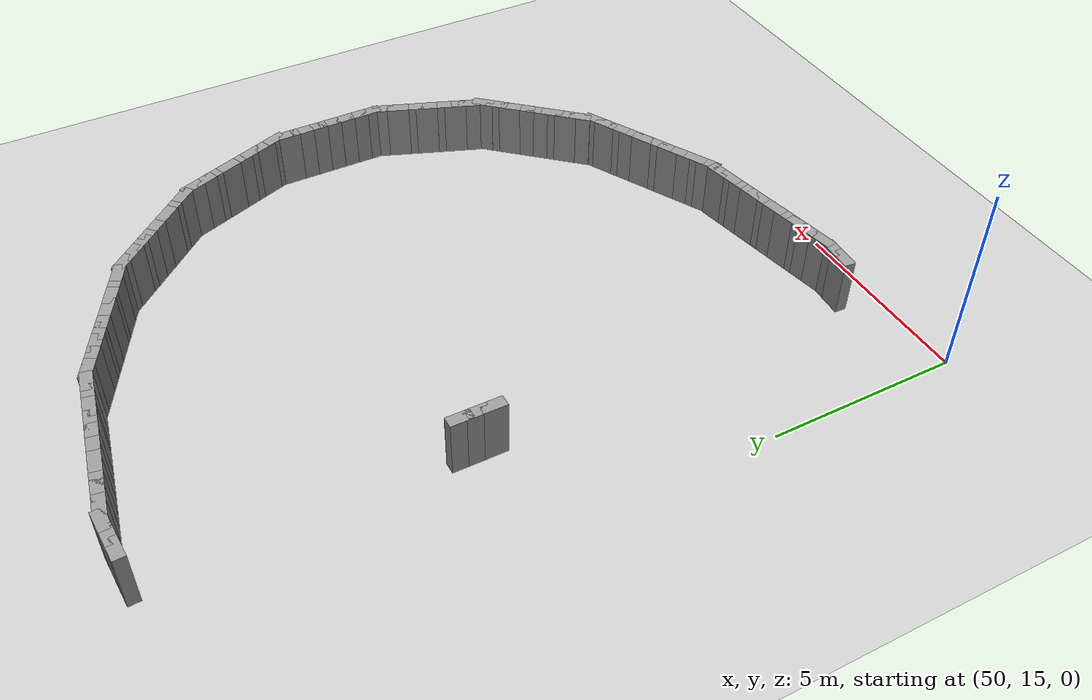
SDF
<sdf version="1.5">
 <world name="test_variable_width">
  <include><uri>model://sun</uri></include>
  <include><uri>model://ground_plane</uri></include>
  <model name="curbL_88">
   <static>true</static>
   <pose>52.624 25.755 0.750 0 0 1.571</pose>
   <link name="link">
    <collision name="col"><geometry><box><size>0.600 0.300 1.500</size></box></geometry></collision>
    <visual name="vis">
     <geometry><box><size>0.600 0.300 1.500</size></box></geometry>
     <material><ambient>0.6 0.6 0.6 1</ambient><diffuse>0.6 0.6 0.6 1</diffuse></material>
    </visual>
   </link>
  </model>
  <model name="curbL_89">
   <static>true</static>
   <pose>52.624 26.155 0.750 0 0 1.571</pose>
   <link name="link">
    <collision name="col"><geometry><box><size>0.600 0.300 1.500</size></box></geometry></collision>
    <visual name="vis">
     <geometry><box><size>0.600 0.300 1.500</size></box></geometry>
     <material><ambient>0.6 0.6 0.6 1</ambient><diffuse>0.6 0.6 0.6 1</diffuse></material>
    </visual>
   </link>
  </model>
  <model name="curbL_90">
   <static>true</static>
   <pose>52.624 26.555 0.750 0 0 1.571</pose>
   <link name="link">
    <collision name="col"><geometry><box><size>0.600 0.300 1.500</size></box></geometry></collision>
    <visual name="vis">
     <geometry><box><size>0.600 0.300 1.500</size></box></geometry>
     <material><ambient>0.6 0.6 0.6 1</ambient><diffuse>0.6 0.6 0.6 1</diffuse></material>
    </visual>
   </link>
  </model>
  <model name="curbR_43">
   <static>true</static>
   <pose>52.712 33.940 0.750 0 0 0.063</pose>
   <link name="link">
    <collision name="col"><geometry><box><size>0.600 0.300 1.500</size></box></geometry></collision>
    <visual name="vis">
     <geometry><box><size>0.600 0.300 1.500</size></box></geometry>
     <material><ambient>0.6 0.6 0.6 1</ambient><diffuse>0.6 0.6 0.6 1</diffuse></material>
    </visual>
   </link>
  </model>
  <model name="curbR_44">
   <static>true</static>
   <pose>53.111 33.966 0.750 0 0 0.063</pose>
   <link name="link">
    <collision name="col"><geometry><box><size>0.600 0.300 1.500</size></box></geometry></collision>
    <visual name="vis">
     <geometry><box><size>0.600 0.300 1.500</size></box></geometry>
     <material><ambient>0.6 0.6 0.6 1</ambient><diffuse>0.6 0.6 0.6 1</diffuse></material>
    </visual>
   </link>
  </model>
  <model name="curbR_45">
   <static>true</static>
   <pose>53.511 33.991 0.750 0 0 0.063</pose>
   <link name="link">
    <collision name="col"><geometry><box><size>0.600 0.300 1.500</size></box></geometry></collision>
    <visual name="vis">
     <geometry><box><size>0.600 0.300 1.500</size></box></geometry>
     <material><ambient>0.6 0.6 0.6 1</ambient><diffuse>0.6 0.6 0.6 1</diffuse></material>
    </visual>
   </link>
  </model>
  <model name="curbR_46">
   <static>true</static>
   <pose>53.905 33.930 0.750 0 0 -0.178</pose>
   <link name="link">
    <collision name="col"><geometry><box><size>0.600 0.300 1.500</size></box></geometry></collision>
    <visual name="vis">
     <geometry><box><size>0.600 0.300 1.500</size></box></geometry>
     <material><ambient>0.6 0.6 0.6 1</ambient><diffuse>0.6 0.6 0.6 1</diffuse></material>
    </visual>
   </link>
  </model>
  <model name="curbR_47">
   <static>true</static>
   <pose>54.298 33.859 0.750 0 0 -0.178</pose>
   <link name="link">
    <collision name="col"><geometry><box><size>0.600 0.300 1.500</size></box></geometry></collision>
    <visual name="vis">
     <geometry><box><size>0.600 0.300 1.500</size></box></geometry>
     <material><ambient>0.6 0.6 0.6 1</ambient><diffuse>0.6 0.6 0.6 1</diffuse></material>
    </visual>
   </link>
  </model>
  <model name="curbR_48">
   <static>true</static>
   <pose>54.692 33.788 0.750 0 0 -0.178</pose>
   <link name="link">
    <collision name="col"><geometry><box><size>0.600 0.300 1.500</size></box></geometry></collision>
    <visual name="vis">
     <geometry><box><size>0.600 0.300 1.500</size></box></geometry>
     <material><ambient>0.6 0.6 0.6 1</ambient><diffuse>0.6 0.6 0.6 1</diffuse></material>
    </visual>
   </link>
  </model>
  <model name="curbR_49">
   <static>true</static>
   <pose>55.086 33.717 0.750 0 0 -0.178</pose>
   <link name="link">
    <collision name="col"><geometry><box><size>0.600 0.300 1.500</size></box></geometry></collision>
    <visual name="vis">
     <geometry><box><size>0.600 0.300 1.500</size></box></geometry>
     <material><ambient>0.6 0.6 0.6 1</ambient><diffuse>0.6 0.6 0.6 1</diffuse></material>
    </visual>
   </link>
  </model>
  <model name="curbR_50">
   <static>true</static>
   <pose>55.479 33.646 0.750 0 0 -0.178</pose>
   <link name="link">
    <collision name="col"><geometry><box><size>0.600 0.300 1.500</size></box></geometry></collision>
    <visual name="vis">
     <geometry><box><size>0.600 0.300 1.500</size></box></geometry>
     <material><ambient>0.6 0.6 0.6 1</ambient><diffuse>0.6 0.6 0.6 1</diffuse></material>
    </visual>
   </link>
  </model>
  <model name="curbR_51">
   <static>true</static>
   <pose>55.873 33.575 0.750 0 0 -0.178</pose>
   <link name="link">
    <collision name="col"><geometry><box><size>0.600 0.300 1.500</size></box></geometry></collision>
    <visual name="vis">
     <geometry><box><size>0.600 0.300 1.500</size></box></geometry>
     <material><ambient>0.6 0.6 0.6 1</ambient><diffuse>0.6 0.6 0.6 1</diffuse></material>
    </visual>
   </link>
  </model>
  <model name="curbR_52">
   <static>true</static>
   <pose>56.267 33.504 0.750 0 0 -0.178</pose>
   <link name="link">
    <collision name="col"><geometry><box><size>0.600 0.300 1.500</size></box></geometry></collision>
    <visual name="vis">
     <geometry><box><size>0.600 0.300 1.500</size></box></geometry>
     <material><ambient>0.6 0.6 0.6 1</ambient><diffuse>0.6 0.6 0.6 1</diffuse></material>
    </visual>
   </link>
  </model>
  <model name="curbR_53">
   <static>true</static>
   <pose>56.660 33.434 0.750 0 0 -0.178</pose>
   <link name="link">
    <collision name="col"><geometry><box><size>0.600 0.300 1.500</size></box></geometry></collision>
    <visual name="vis">
     <geometry><box><size>0.600 0.300 1.500</size></box></geometry>
     <material><ambient>0.6 0.6 0.6 1</ambient><diffuse>0.6 0.6 0.6 1</diffuse></material>
    </visual>
   </link>
  </model>
  <model name="curbR_54">
   <static>true</static>
   <pose>57.054 33.363 0.750 0 0 -0.178</pose>
   <link name="link">
    <collision name="col"><geometry><box><size>0.600 0.300 1.500</size></box></geometry></collision>
    <visual name="vis">
     <geometry><box><size>0.600 0.300 1.500</size></box></geometry>
     <material><ambient>0.6 0.6 0.6 1</ambient><diffuse>0.6 0.6 0.6 1</diffuse></material>
    </visual>
   </link>
  </model>
  <model name="curbR_55">
   <static>true</static>
   <pose>57.448 33.292 0.750 0 0 -0.178</pose>
   <link name="link">
    <collision name="col"><geometry><box><size>0.600 0.300 1.500</size></box></geometry></collision>
    <visual name="vis">
     <geometry><box><size>0.600 0.300 1.500</size></box></geometry>
     <material><ambient>0.6 0.6 0.6 1</ambient><diffuse>0.6 0.6 0.6 1</diffuse></material>
    </visual>
   </link>
  </model>
  <model name="curbR_56">
   <static>true</static>
   <pose>57.828 33.180 0.750 0 0 -0.470</pose>
   <link name="link">
    <collision name="col"><geometry><box><size>0.600 0.300 1.500</size></box></geometry></collision>
    <visual name="vis">
     <geometry><box><size>0.600 0.300 1.500</size></box></geometry>
     <material><ambient>0.6 0.6 0.6 1</ambient><diffuse>0.6 0.6 0.6 1</diffuse></material>
    </visual>
   </link>
  </model>
  <model name="curbR_57">
   <static>true</static>
   <pose>58.184 32.999 0.750 0 0 -0.470</pose>
   <link name="link">
    <collision name="col"><geometry><box><size>0.600 0.300 1.500</size></box></geometry></collision>
    <visual name="vis">
     <geometry><box><size>0.600 0.300 1.500</size></box></geometry>
     <material><ambient>0.6 0.6 0.6 1</ambient><diffuse>0.6 0.6 0.6 1</diffuse></material>
    </visual>
   </link>
  </model>
  <model name="curbR_58">
   <static>true</static>
   <pose>58.541 32.818 0.750 0 0 -0.470</pose>
   <link name="link">
    <collision name="col"><geometry><box><size>0.600 0.300 1.500</size></box></geometry></collision>
    <visual name="vis">
     <geometry><box><size>0.600 0.300 1.500</size></box></geometry>
     <material><ambient>0.6 0.6 0.6 1</ambient><diffuse>0.6 0.6 0.6 1</diffuse></material>
    </visual>
   </link>
  </model>
  <model name="curbR_59">
   <static>true</static>
   <pose>58.898 32.637 0.750 0 0 -0.470</pose>
   <link name="link">
    <collision name="col"><geometry><box><size>0.600 0.300 1.500</size></box></geometry></collision>
    <visual name="vis">
     <geometry><box><size>0.600 0.300 1.500</size></box></geometry>
     <material><ambient>0.6 0.6 0.6 1</ambient><diffuse>0.6 0.6 0.6 1</diffuse></material>
    </visual>
   </link>
  </model>
  <model name="curbR_60">
   <static>true</static>
   <pose>59.254 32.456 0.750 0 0 -0.470</pose>
   <link name="link">
    <collision name="col"><geometry><box><size>0.600 0.300 1.500</size></box></geometry></collision>
    <visual name="vis">
     <geometry><box><size>0.600 0.300 1.500</size></box></geometry>
     <material><ambient>0.6 0.6 0.6 1</ambient><diffuse>0.6 0.6 0.6 1</diffuse></material>
    </visual>
   </link>
  </model>
  <model name="curbR_61">
   <static>true</static>
   <pose>59.611 32.274 0.750 0 0 -0.470</pose>
   <link name="link">
    <collision name="col"><geometry><box><size>0.600 0.300 1.500</size></box></geometry></collision>
    <visual name="vis">
     <geometry><box><size>0.600 0.300 1.500</size></box></geometry>
     <material><ambient>0.6 0.6 0.6 1</ambient><diffuse>0.6 0.6 0.6 1</diffuse></material>
    </visual>
   </link>
  </model>
  <model name="curbR_62">
   <static>true</static>
   <pose>59.968 32.093 0.750 0 0 -0.470</pose>
   <link name="link">
    <collision name="col"><geometry><box><size>0.600 0.300 1.500</size></box></geometry></collision>
    <visual name="vis">
     <geometry><box><size>0.600 0.300 1.500</size></box></geometry>
     <material><ambient>0.6 0.6 0.6 1</ambient><diffuse>0.6 0.6 0.6 1</diffuse></material>
    </visual>
   </link>
  </model>
  <model name="curbR_63">
   <static>true</static>
   <pose>60.324 31.912 0.750 0 0 -0.470</pose>
   <link name="link">
    <collision name="col"><geometry><box><size>0.600 0.300 1.500</size></box></geometry></collision>
    <visual name="vis">
     <geometry><box><size>0.600 0.300 1.500</size></box></geometry>
     <material><ambient>0.6 0.6 0.6 1</ambient><diffuse>0.6 0.6 0.6 1</diffuse></material>
    </visual>
   </link>
  </model>
  <model name="curbR_64">
   <static>true</static>
   <pose>60.681 31.731 0.750 0 0 -0.470</pose>
   <link name="link">
    <collision name="col"><geometry><box><size>0.600 0.300 1.500</size></box></geometry></collision>
    <visual name="vis">
     <geometry><box><size>0.600 0.300 1.500</size></box></geometry>
     <material><ambient>0.6 0.6 0.6 1</ambient><diffuse>0.6 0.6 0.6 1</diffuse></material>
    </visual>
   </link>
  </model>
  <model name="curbR_65">
   <static>true</static>
   <pose>61.011 31.515 0.750 0 0 -0.827</pose>
   <link name="link">
    <collision name="col"><geometry><box><size>0.600 0.300 1.500</size></box></geometry></collision>
    <visual name="vis">
     <geometry><box><size>0.600 0.300 1.500</size></box></geometry>
     <material><ambient>0.6 0.6 0.6 1</ambient><diffuse>0.6 0.6 0.6 1</diffuse></material>
    </visual>
   </link>
  </model>
  <model name="curbR_66">
   <static>true</static>
   <pose>61.281 31.220 0.750 0 0 -0.827</pose>
   <link name="link">
    <collision name="col"><geometry><box><size>0.600 0.300 1.500</size></box></geometry></collision>
    <visual name="vis">
     <geometry><box><size>0.600 0.300 1.500</size></box></geometry>
     <material><ambient>0.6 0.6 0.6 1</ambient><diffuse>0.6 0.6 0.6 1</diffuse></material>
    </visual>
   </link>
  </model>
  <model name="curbR_67">
   <static>true</static>
   <pose>61.552 30.926 0.750 0 0 -0.827</pose>
   <link name="link">
    <collision name="col"><geometry><box><size>0.600 0.300 1.500</size></box></geometry></collision>
    <visual name="vis">
     <geometry><box><size>0.600 0.300 1.500</size></box></geometry>
     <material><ambient>0.6 0.6 0.6 1</ambient><diffuse>0.6 0.6 0.6 1</diffuse></material>
    </visual>
   </link>
  </model>
  <model name="curbR_68">
   <static>true</static>
   <pose>61.823 30.631 0.750 0 0 -0.827</pose>
   <link name="link">
    <collision name="col"><geometry><box><size>0.600 0.300 1.500</size></box></geometry></collision>
    <visual name="vis">
     <geometry><box><size>0.600 0.300 1.500</size></box></geometry>
     <material><ambient>0.6 0.6 0.6 1</ambient><diffuse>0.6 0.6 0.6 1</diffuse></material>
    </visual>
   </link>
  </model>
  <model name="curbR_69">
   <static>true</static>
   <pose>62.093 30.337 0.750 0 0 -0.827</pose>
   <link name="link">
    <collision name="col"><geometry><box><size>0.600 0.300 1.500</size></box></geometry></collision>
    <visual name="vis">
     <geometry><box><size>0.600 0.300 1.500</size></box></geometry>
     <material><ambient>0.6 0.6 0.6 1</ambient><diffuse>0.6 0.6 0.6 1</diffuse></material>
    </visual>
   </link>
  </model>
  <model name="curbR_70">
   <static>true</static>
   <pose>62.364 30.042 0.750 0 0 -0.827</pose>
   <link name="link">
    <collision name="col"><geometry><box><size>0.600 0.300 1.500</size></box></geometry></collision>
    <visual name="vis">
     <geometry><box><size>0.600 0.300 1.500</size></box></geometry>
     <material><ambient>0.6 0.6 0.6 1</ambient><diffuse>0.6 0.6 0.6 1</diffuse></material>
    </visual>
   </link>
  </model>
  <model name="curbR_71">
   <static>true</static>
   <pose>62.635 29.748 0.750 0 0 -0.827</pose>
   <link name="link">
    <collision name="col"><geometry><box><size>0.600 0.300 1.500</size></box></geometry></collision>
    <visual name="vis">
     <geometry><box><size>0.600 0.300 1.500</size></box></geometry>
     <material><ambient>0.6 0.6 0.6 1</ambient><diffuse>0.6 0.6 0.6 1</diffuse></material>
    </visual>
   </link>
  </model>
  <model name="curbR_72">
   <static>true</static>
   <pose>62.906 29.453 0.750 0 0 -0.827</pose>
   <link name="link">
    <collision name="col"><geometry><box><size>0.600 0.300 1.500</size></box></geometry></collision>
    <visual name="vis">
     <geometry><box><size>0.600 0.300 1.500</size></box></geometry>
     <material><ambient>0.6 0.6 0.6 1</ambient><diffuse>0.6 0.6 0.6 1</diffuse></material>
    </visual>
   </link>
  </model>
  <model name="curbR_73">
   <static>true</static>
   <pose>63.130 29.130 0.750 0 0 -1.198</pose>
   <link name="link">
    <collision name="col"><geometry><box><size>0.600 0.300 1.500</size></box></geometry></collision>
    <visual name="vis">
     <geometry><box><size>0.600 0.300 1.500</size></box></geometry>
     <material><ambient>0.6 0.6 0.6 1</ambient><diffuse>0.6 0.6 0.6 1</diffuse></material>
    </visual>
   </link>
  </model>
  <model name="curbR_74">
   <static>true</static>
   <pose>63.276 28.757 0.750 0 0 -1.198</pose>
   <link name="link">
    <collision name="col"><geometry><box><size>0.600 0.300 1.500</size></box></geometry></collision>
    <visual name="vis">
     <geometry><box><size>0.600 0.300 1.500</size></box></geometry>
     <material><ambient>0.6 0.6 0.6 1</ambient><diffuse>0.6 0.6 0.6 1</diffuse></material>
    </visual>
   </link>
  </model>
  <model name="curbR_75">
   <static>true</static>
   <pose>63.422 28.385 0.750 0 0 -1.198</pose>
   <link name="link">
    <collision name="col"><geometry><box><size>0.600 0.300 1.500</size></box></geometry></collision>
    <visual name="vis">
     <geometry><box><size>0.600 0.300 1.500</size></box></geometry>
     <material><ambient>0.6 0.6 0.6 1</ambient><diffuse>0.6 0.6 0.6 1</diffuse></material>
    </visual>
   </link>
  </model>
  <model name="curbR_76">
   <static>true</static>
   <pose>63.567 28.012 0.750 0 0 -1.198</pose>
   <link name="link">
    <collision name="col"><geometry><box><size>0.600 0.300 1.500</size></box></geometry></collision>
    <visual name="vis">
     <geometry><box><size>0.600 0.300 1.500</size></box></geometry>
     <material><ambient>0.6 0.6 0.6 1</ambient><diffuse>0.6 0.6 0.6 1</diffuse></material>
    </visual>
   </link>
  </model>
  <model name="curbR_77">
   <static>true</static>
   <pose>63.713 27.640 0.750 0 0 -1.198</pose>
   <link name="link">
    <collision name="col"><geometry><box><size>0.600 0.300 1.500</size></box></geometry></collision>
    <visual name="vis">
     <geometry><box><size>0.600 0.300 1.500</size></box></geometry>
     <material><ambient>0.6 0.6 0.6 1</ambient><diffuse>0.6 0.6 0.6 1</diffuse></material>
    </visual>
   </link>
  </model>
  <model name="curbR_78">
   <static>true</static>
   <pose>63.859 27.267 0.750 0 0 -1.198</pose>
   <link name="link">
    <collision name="col"><geometry><box><size>0.600 0.300 1.500</size></box></geometry></collision>
    <visual name="vis">
     <geometry><box><size>0.600 0.300 1.500</size></box></geometry>
     <material><ambient>0.6 0.6 0.6 1</ambient><diffuse>0.6 0.6 0.6 1</diffuse></material>
    </visual>
   </link>
  </model>
  <model name="curbR_79">
   <static>true</static>
   <pose>64.004 26.895 0.750 0 0 -1.198</pose>
   <link name="link">
    <collision name="col"><geometry><box><size>0.600 0.300 1.500</size></box></geometry></collision>
    <visual name="vis">
     <geometry><box><size>0.600 0.300 1.500</size></box></geometry>
     <material><ambient>0.6 0.6 0.6 1</ambient><diffuse>0.6 0.6 0.6 1</diffuse></material>
    </visual>
   </link>
  </model>
  <model name="curbR_80">
   <static>true</static>
   <pose>64.150 26.522 0.750 0 0 -1.198</pose>
   <link name="link">
    <collision name="col"><geometry><box><size>0.600 0.300 1.500</size></box></geometry></collision>
    <visual name="vis">
     <geometry><box><size>0.600 0.300 1.500</size></box></geometry>
     <material><ambient>0.6 0.6 0.6 1</ambient><diffuse>0.6 0.6 0.6 1</diffuse></material>
    </visual>
   </link>
  </model>
  <model name="curbR_81">
   <static>true</static>
   <pose>64.171 26.126 0.750 0 0 -1.571</pose>
   <link name="link">
    <collision name="col"><geometry><box><size>0.600 0.300 1.500</size></box></geometry></collision>
    <visual name="vis">
     <geometry><box><size>0.600 0.300 1.500</size></box></geometry>
     <material><ambient>0.6 0.6 0.6 1</ambient><diffuse>0.6 0.6 0.6 1</diffuse></material>
    </visual>
   </link>
  </model>
  <model name="curbR_82">
   <static>true</static>
   <pose>64.171 25.726 0.750 0 0 -1.571</pose>
   <link name="link">
    <collision name="col"><geometry><box><size>0.600 0.300 1.500</size></box></geometry></collision>
    <visual name="vis">
     <geometry><box><size>0.600 0.300 1.500</size></box></geometry>
     <material><ambient>0.6 0.6 0.6 1</ambient><diffuse>0.6 0.6 0.6 1</diffuse></material>
    </visual>
   </link>
  </model>
  <model name="curbR_83">
   <static>true</static>
   <pose>64.171 25.326 0.750 0 0 -1.571</pose>
   <link name="link">
    <collision name="col"><geometry><box><size>0.600 0.300 1.500</size></box></geometry></collision>
    <visual name="vis">
     <geometry><box><size>0.600 0.300 1.500</size></box></geometry>
     <material><ambient>0.6 0.6 0.6 1</ambient><diffuse>0.6 0.6 0.6 1</diffuse></material>
    </visual>
   </link>
  </model>
  <model name="curbR_84">
   <static>true</static>
   <pose>64.171 24.926 0.750 0 0 -1.571</pose>
   <link name="link">
    <collision name="col"><geometry><box><size>0.600 0.300 1.500</size></box></geometry></collision>
    <visual name="vis">
     <geometry><box><size>0.600 0.300 1.500</size></box></geometry>
     <material><ambient>0.6 0.6 0.6 1</ambient><diffuse>0.6 0.6 0.6 1</diffuse></material>
    </visual>
   </link>
  </model>
  <model name="curbR_85">
   <static>true</static>
   <pose>64.171 24.526 0.750 0 0 -1.571</pose>
   <link name="link">
    <collision name="col"><geometry><box><size>0.600 0.300 1.500</size></box></geometry></collision>
    <visual name="vis">
     <geometry><box><size>0.600 0.300 1.500</size></box></geometry>
     <material><ambient>0.6 0.6 0.6 1</ambient><diffuse>0.6 0.6 0.6 1</diffuse></material>
    </visual>
   </link>
  </model>
  <model name="curbR_86">
   <static>true</static>
   <pose>64.171 24.126 0.750 0 0 -1.571</pose>
   <link name="link">
    <collision name="col"><geometry><box><size>0.600 0.300 1.500</size></box></geometry></collision>
    <visual name="vis">
     <geometry><box><size>0.600 0.300 1.500</size></box></geometry>
     <material><ambient>0.6 0.6 0.6 1</ambient><diffuse>0.6 0.6 0.6 1</diffuse></material>
    </visual>
   </link>
  </model>
  <model name="curbR_87">
   <static>true</static>
   <pose>64.171 23.726 0.750 0 0 -1.571</pose>
   <link name="link">
    <collision name="col"><geometry><box><size>0.600 0.300 1.500</size></box></geometry></collision>
    <visual name="vis">
     <geometry><box><size>0.600 0.300 1.500</size></box></geometry>
     <material><ambient>0.6 0.6 0.6 1</ambient><diffuse>0.6 0.6 0.6 1</diffuse></material>
    </visual>
   </link>
  </model>
  <model name="curbR_88">
   <static>true</static>
   <pose>64.096 23.340 0.750 0 0 -1.944</pose>
   <link name="link">
    <collision name="col"><geometry><box><size>0.600 0.300 1.500</size></box></geometry></collision>
    <visual name="vis">
     <geometry><box><size>0.600 0.300 1.500</size></box></geometry>
     <material><ambient>0.6 0.6 0.6 1</ambient><diffuse>0.6 0.6 0.6 1</diffuse></material>
    </visual>
   </link>
  </model>
  <model name="curbR_89">
   <static>true</static>
   <pose>63.950 22.968 0.750 0 0 -1.944</pose>
   <link name="link">
    <collision name="col"><geometry><box><size>0.600 0.300 1.500</size></box></geometry></collision>
    <visual name="vis">
     <geometry><box><size>0.600 0.300 1.500</size></box></geometry>
     <material><ambient>0.6 0.6 0.6 1</ambient><diffuse>0.6 0.6 0.6 1</diffuse></material>
    </visual>
   </link>
  </model>
  <model name="curbR_90">
   <static>true</static>
   <pose>63.805 22.595 0.750 0 0 -1.944</pose>
   <link name="link">
    <collision name="col"><geometry><box><size>0.600 0.300 1.500</size></box></geometry></collision>
    <visual name="vis">
     <geometry><box><size>0.600 0.300 1.500</size></box></geometry>
     <material><ambient>0.6 0.6 0.6 1</ambient><diffuse>0.6 0.6 0.6 1</diffuse></material>
    </visual>
   </link>
  </model>
  <model name="curbR_91">
   <static>true</static>
   <pose>63.659 22.223 0.750 0 0 -1.944</pose>
   <link name="link">
    <collision name="col"><geometry><box><size>0.600 0.300 1.500</size></box></geometry></collision>
    <visual name="vis">
     <geometry><box><size>0.600 0.300 1.500</size></box></geometry>
     <material><ambient>0.6 0.6 0.6 1</ambient><diffuse>0.6 0.6 0.6 1</diffuse></material>
    </visual>
   </link>
  </model>
  <model name="curbR_92">
   <static>true</static>
   <pose>63.514 21.850 0.750 0 0 -1.944</pose>
   <link name="link">
    <collision name="col"><geometry><box><size>0.600 0.300 1.500</size></box></geometry></collision>
    <visual name="vis">
     <geometry><box><size>0.600 0.300 1.500</size></box></geometry>
     <material><ambient>0.6 0.6 0.6 1</ambient><diffuse>0.6 0.6 0.6 1</diffuse></material>
    </visual>
   </link>
  </model>
  <model name="curbR_93">
   <static>true</static>
   <pose>63.368 21.478 0.750 0 0 -1.944</pose>
   <link name="link">
    <collision name="col"><geometry><box><size>0.600 0.300 1.500</size></box></geometry></collision>
    <visual name="vis">
     <geometry><box><size>0.600 0.300 1.500</size></box></geometry>
     <material><ambient>0.6 0.6 0.6 1</ambient><diffuse>0.6 0.6 0.6 1</diffuse></material>
    </visual>
   </link>
  </model>
  <model name="curbR_94">
   <static>true</static>
   <pose>63.222 21.105 0.750 0 0 -1.944</pose>
   <link name="link">
    <collision name="col"><geometry><box><size>0.600 0.300 1.500</size></box></geometry></collision>
    <visual name="vis">
     <geometry><box><size>0.600 0.300 1.500</size></box></geometry>
     <material><ambient>0.6 0.6 0.6 1</ambient><diffuse>0.6 0.6 0.6 1</diffuse></material>
    </visual>
   </link>
  </model>
  <model name="curbR_95">
   <static>true</static>
   <pose>63.076 20.733 0.750 0 0 -2.314</pose>
   <link name="link">
    <collision name="col"><geometry><box><size>0.600 0.300 1.500</size></box></geometry></collision>
    <visual name="vis">
     <geometry><box><size>0.600 0.300 1.500</size></box></geometry>
     <material><ambient>0.6 0.6 0.6 1</ambient><diffuse>0.6 0.6 0.6 1</diffuse></material>
    </visual>
   </link>
  </model>
  <model name="curbR_96">
   <static>true</static>
   <pose>62.806 20.438 0.750 0 0 -2.314</pose>
   <link name="link">
    <collision name="col"><geometry><box><size>0.600 0.300 1.500</size></box></geometry></collision>
    <visual name="vis">
     <geometry><box><size>0.600 0.300 1.500</size></box></geometry>
     <material><ambient>0.6 0.6 0.6 1</ambient><diffuse>0.6 0.6 0.6 1</diffuse></material>
    </visual>
   </link>
  </model>
  <model name="curbR_97">
   <static>true</static>
   <pose>62.535 20.144 0.750 0 0 -2.314</pose>
   <link name="link">
    <collision name="col"><geometry><box><size>0.600 0.300 1.500</size></box></geometry></collision>
    <visual name="vis">
     <geometry><box><size>0.600 0.300 1.500</size></box></geometry>
     <material><ambient>0.6 0.6 0.6 1</ambient><diffuse>0.6 0.6 0.6 1</diffuse></material>
    </visual>
   </link>
  </model>
  <model name="curbR_98">
   <static>true</static>
   <pose>62.264 19.849 0.750 0 0 -2.314</pose>
   <link name="link">
    <collision name="col"><geometry><box><size>0.600 0.300 1.500</size></box></geometry></collision>
    <visual name="vis">
     <geometry><box><size>0.600 0.300 1.500</size></box></geometry>
     <material><ambient>0.6 0.6 0.6 1</ambient><diffuse>0.6 0.6 0.6 1</diffuse></material>
    </visual>
   </link>
  </model>
  <model name="curbR_99">
   <static>true</static>
   <pose>61.994 19.555 0.750 0 0 -2.314</pose>
   <link name="link">
    <collision name="col"><geometry><box><size>0.600 0.300 1.500</size></box></geometry></collision>
    <visual name="vis">
     <geometry><box><size>0.600 0.300 1.500</size></box></geometry>
     <material><ambient>0.6 0.6 0.6 1</ambient><diffuse>0.6 0.6 0.6 1</diffuse></material>
    </visual>
   </link>
  </model>
  <model name="curbR_100">
   <static>true</static>
   <pose>61.723 19.260 0.750 0 0 -2.314</pose>
   <link name="link">
    <collision name="col"><geometry><box><size>0.600 0.300 1.500</size></box></geometry></collision>
    <visual name="vis">
     <geometry><box><size>0.600 0.300 1.500</size></box></geometry>
     <material><ambient>0.6 0.6 0.6 1</ambient><diffuse>0.6 0.6 0.6 1</diffuse></material>
    </visual>
   </link>
  </model>
  <model name="curbR_101">
   <static>true</static>
   <pose>61.452 18.966 0.750 0 0 -2.314</pose>
   <link name="link">
    <collision name="col"><geometry><box><size>0.600 0.300 1.500</size></box></geometry></collision>
    <visual name="vis">
     <geometry><box><size>0.600 0.300 1.500</size></box></geometry>
     <material><ambient>0.6 0.6 0.6 1</ambient><diffuse>0.6 0.6 0.6 1</diffuse></material>
    </visual>
   </link>
  </model>
  <model name="curbR_102">
   <static>true</static>
   <pose>61.181 18.671 0.750 0 0 -2.314</pose>
   <link name="link">
    <collision name="col"><geometry><box><size>0.600 0.300 1.500</size></box></geometry></collision>
    <visual name="vis">
     <geometry><box><size>0.600 0.300 1.500</size></box></geometry>
     <material><ambient>0.6 0.6 0.6 1</ambient><diffuse>0.6 0.6 0.6 1</diffuse></material>
    </visual>
   </link>
  </model>
  <model name="curbR_103">
   <static>true</static>
   <pose>60.906 18.383 0.750 0 0 -2.672</pose>
   <link name="link">
    <collision name="col"><geometry><box><size>0.600 0.300 1.500</size></box></geometry></collision>
    <visual name="vis">
     <geometry><box><size>0.600 0.300 1.500</size></box></geometry>
     <material><ambient>0.6 0.6 0.6 1</ambient><diffuse>0.6 0.6 0.6 1</diffuse></material>
    </visual>
   </link>
  </model>
  <model name="curbR_104">
   <static>true</static>
   <pose>60.549 18.202 0.750 0 0 -2.672</pose>
   <link name="link">
    <collision name="col"><geometry><box><size>0.600 0.300 1.500</size></box></geometry></collision>
    <visual name="vis">
     <geometry><box><size>0.600 0.300 1.500</size></box></geometry>
     <material><ambient>0.6 0.6 0.6 1</ambient><diffuse>0.6 0.6 0.6 1</diffuse></material>
    </visual>
   </link>
  </model>
  <model name="curbR_105">
   <static>true</static>
   <pose>60.193 18.021 0.750 0 0 -2.672</pose>
   <link name="link">
    <collision name="col"><geometry><box><size>0.600 0.300 1.500</size></box></geometry></collision>
    <visual name="vis">
     <geometry><box><size>0.600 0.300 1.500</size></box></geometry>
     <material><ambient>0.6 0.6 0.6 1</ambient><diffuse>0.6 0.6 0.6 1</diffuse></material>
    </visual>
   </link>
  </model>
  <model name="curbR_106">
   <static>true</static>
   <pose>59.836 17.840 0.750 0 0 -2.672</pose>
   <link name="link">
    <collision name="col"><geometry><box><size>0.600 0.300 1.500</size></box></geometry></collision>
    <visual name="vis">
     <geometry><box><size>0.600 0.300 1.500</size></box></geometry>
     <material><ambient>0.6 0.6 0.6 1</ambient><diffuse>0.6 0.6 0.6 1</diffuse></material>
    </visual>
   </link>
  </model>
  <model name="curbR_107">
   <static>true</static>
   <pose>59.479 17.659 0.750 0 0 -2.672</pose>
   <link name="link">
    <collision name="col"><geometry><box><size>0.600 0.300 1.500</size></box></geometry></collision>
    <visual name="vis">
     <geometry><box><size>0.600 0.300 1.500</size></box></geometry>
     <material><ambient>0.6 0.6 0.6 1</ambient><diffuse>0.6 0.6 0.6 1</diffuse></material>
    </visual>
   </link>
  </model>
  <model name="curbR_108">
   <static>true</static>
   <pose>59.123 17.478 0.750 0 0 -2.672</pose>
   <link name="link">
    <collision name="col"><geometry><box><size>0.600 0.300 1.500</size></box></geometry></collision>
    <visual name="vis">
     <geometry><box><size>0.600 0.300 1.500</size></box></geometry>
     <material><ambient>0.6 0.6 0.6 1</ambient><diffuse>0.6 0.6 0.6 1</diffuse></material>
    </visual>
   </link>
  </model>
  <model name="curbR_109">
   <static>true</static>
   <pose>58.766 17.297 0.750 0 0 -2.672</pose>
   <link name="link">
    <collision name="col"><geometry><box><size>0.600 0.300 1.500</size></box></geometry></collision>
    <visual name="vis">
     <geometry><box><size>0.600 0.300 1.500</size></box></geometry>
     <material><ambient>0.6 0.6 0.6 1</ambient><diffuse>0.6 0.6 0.6 1</diffuse></material>
    </visual>
   </link>
  </model>
  <model name="curbR_110">
   <static>true</static>
   <pose>58.409 17.115 0.750 0 0 -2.672</pose>
   <link name="link">
    <collision name="col"><geometry><box><size>0.600 0.300 1.500</size></box></geometry></collision>
    <visual name="vis">
     <geometry><box><size>0.600 0.300 1.500</size></box></geometry>
     <material><ambient>0.6 0.6 0.6 1</ambient><diffuse>0.6 0.6 0.6 1</diffuse></material>
    </visual>
   </link>
  </model>
  <model name="curbR_111">
   <static>true</static>
   <pose>58.053 16.934 0.750 0 0 -2.672</pose>
   <link name="link">
    <collision name="col"><geometry><box><size>0.600 0.300 1.500</size></box></geometry></collision>
    <visual name="vis">
     <geometry><box><size>0.600 0.300 1.500</size></box></geometry>
     <material><ambient>0.6 0.6 0.6 1</ambient><diffuse>0.6 0.6 0.6 1</diffuse></material>
    </visual>
   </link>
  </model>
  <model name="curbR_112">
   <static>true</static>
   <pose>57.696 16.753 0.750 0 0 -2.672</pose>
   <link name="link">
    <collision name="col"><geometry><box><size>0.600 0.300 1.500</size></box></geometry></collision>
    <visual name="vis">
     <geometry><box><size>0.600 0.300 1.500</size></box></geometry>
     <material><ambient>0.6 0.6 0.6 1</ambient><diffuse>0.6 0.6 0.6 1</diffuse></material>
    </visual>
   </link>
  </model>
  <model name="curbR_113">
   <static>true</static>
   <pose>57.302 16.682 0.750 0 0 -2.963</pose>
   <link name="link">
    <collision name="col"><geometry><box><size>0.600 0.300 1.500</size></box></geometry></collision>
    <visual name="vis">
     <geometry><box><size>0.600 0.300 1.500</size></box></geometry>
     <material><ambient>0.6 0.6 0.6 1</ambient><diffuse>0.6 0.6 0.6 1</diffuse></material>
    </visual>
   </link>
  </model>
  <model name="curbR_114">
   <static>true</static>
   <pose>56.909 16.611 0.750 0 0 -2.963</pose>
   <link name="link">
    <collision name="col"><geometry><box><size>0.600 0.300 1.500</size></box></geometry></collision>
    <visual name="vis">
     <geometry><box><size>0.600 0.300 1.500</size></box></geometry>
     <material><ambient>0.6 0.6 0.6 1</ambient><diffuse>0.6 0.6 0.6 1</diffuse></material>
    </visual>
   </link>
  </model>
  <model name="curbR_115">
   <static>true</static>
   <pose>56.515 16.540 0.750 0 0 -2.963</pose>
   <link name="link">
    <collision name="col"><geometry><box><size>0.600 0.300 1.500</size></box></geometry></collision>
    <visual name="vis">
     <geometry><box><size>0.600 0.300 1.500</size></box></geometry>
     <material><ambient>0.6 0.6 0.6 1</ambient><diffuse>0.6 0.6 0.6 1</diffuse></material>
    </visual>
   </link>
  </model>
  <model name="curbR_116">
   <static>true</static>
   <pose>56.121 16.469 0.750 0 0 -2.963</pose>
   <link name="link">
    <collision name="col"><geometry><box><size>0.600 0.300 1.500</size></box></geometry></collision>
    <visual name="vis">
     <geometry><box><size>0.600 0.300 1.500</size></box></geometry>
     <material><ambient>0.6 0.6 0.6 1</ambient><diffuse>0.6 0.6 0.6 1</diffuse></material>
    </visual>
   </link>
  </model>
  <model name="curbR_117">
   <static>true</static>
   <pose>55.728 16.398 0.750 0 0 -2.963</pose>
   <link name="link">
    <collision name="col"><geometry><box><size>0.600 0.300 1.500</size></box></geometry></collision>
    <visual name="vis">
     <geometry><box><size>0.600 0.300 1.500</size></box></geometry>
     <material><ambient>0.6 0.6 0.6 1</ambient><diffuse>0.6 0.6 0.6 1</diffuse></material>
    </visual>
   </link>
  </model>
  <model name="curbR_118">
   <static>true</static>
   <pose>55.334 16.328 0.750 0 0 -2.963</pose>
   <link name="link">
    <collision name="col"><geometry><box><size>0.600 0.300 1.500</size></box></geometry></collision>
    <visual name="vis">
     <geometry><box><size>0.600 0.300 1.500</size></box></geometry>
     <material><ambient>0.6 0.6 0.6 1</ambient><diffuse>0.6 0.6 0.6 1</diffuse></material>
    </visual>
   </link>
  </model>
  <model name="curbR_119">
   <static>true</static>
   <pose>54.940 16.257 0.750 0 0 -2.963</pose>
   <link name="link">
    <collision name="col"><geometry><box><size>0.600 0.300 1.500</size></box></geometry></collision>
    <visual name="vis">
     <geometry><box><size>0.600 0.300 1.500</size></box></geometry>
     <material><ambient>0.6 0.6 0.6 1</ambient><diffuse>0.6 0.6 0.6 1</diffuse></material>
    </visual>
   </link>
  </model>
  <model name="curbR_120">
   <static>true</static>
   <pose>54.547 16.186 0.750 0 0 -2.963</pose>
   <link name="link">
    <collision name="col"><geometry><box><size>0.600 0.300 1.500</size></box></geometry></collision>
    <visual name="vis">
     <geometry><box><size>0.600 0.300 1.500</size></box></geometry>
     <material><ambient>0.6 0.6 0.6 1</ambient><diffuse>0.6 0.6 0.6 1</diffuse></material>
    </visual>
   </link>
  </model>
  <model name="curbR_121">
   <static>true</static>
   <pose>54.153 16.115 0.750 0 0 -2.963</pose>
   <link name="link">
    <collision name="col"><geometry><box><size>0.600 0.300 1.500</size></box></geometry></collision>
    <visual name="vis">
     <geometry><box><size>0.600 0.300 1.500</size></box></geometry>
     <material><ambient>0.6 0.6 0.6 1</ambient><diffuse>0.6 0.6 0.6 1</diffuse></material>
    </visual>
   </link>
  </model>
  <model name="curbR_122">
   <static>true</static>
   <pose>53.759 16.044 0.750 0 0 -2.963</pose>
   <link name="link">
    <collision name="col"><geometry><box><size>0.600 0.300 1.500</size></box></geometry></collision>
    <visual name="vis">
     <geometry><box><size>0.600 0.300 1.500</size></box></geometry>
     <material><ambient>0.6 0.6 0.6 1</ambient><diffuse>0.6 0.6 0.6 1</diffuse></material>
    </visual>
   </link>
  </model>
  <model name="curbR_123">
   <static>true</static>
   <pose>53.363 16.018 0.750 0 0 3.078</pose>
   <link name="link">
    <collision name="col"><geometry><box><size>0.600 0.300 1.500</size></box></geometry></collision>
    <visual name="vis">
     <geometry><box><size>0.600 0.300 1.500</size></box></geometry>
     <material><ambient>0.6 0.6 0.6 1</ambient><diffuse>0.6 0.6 0.6 1</diffuse></material>
    </visual>
   </link>
  </model>
  <model name="curbR_124">
   <static>true</static>
   <pose>52.964 16.044 0.750 0 0 3.078</pose>
   <link name="link">
    <collision name="col"><geometry><box><size>0.600 0.300 1.500</size></box></geometry></collision>
    <visual name="vis">
     <geometry><box><size>0.600 0.300 1.500</size></box></geometry>
     <material><ambient>0.6 0.6 0.6 1</ambient><diffuse>0.6 0.6 0.6 1</diffuse></material>
    </visual>
   </link>
  </model>
 </world>
</sdf>
